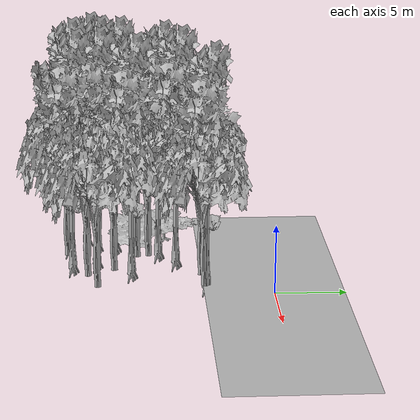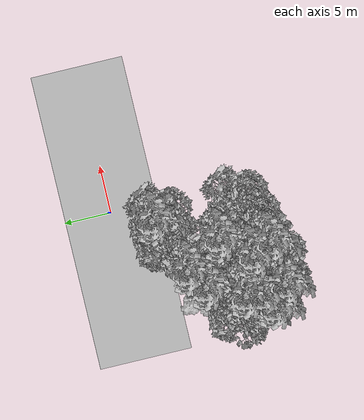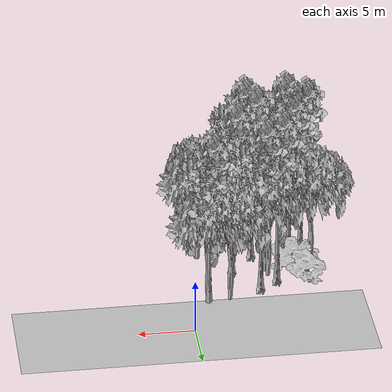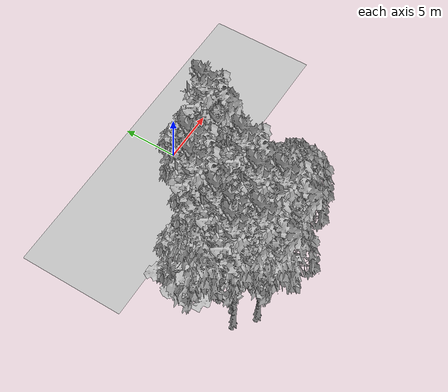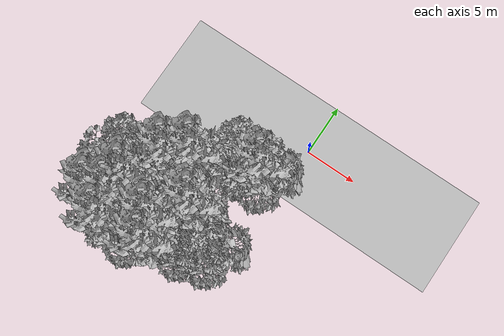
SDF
<sdf version="1.7">
 <world name="default">
  <model name="ground_plane">
   <static>1</static>
   <link name="link">
    <collision name="collision">
     <pose>-50 0 0 0 -0 0</pose>
     <geometry><plane><normal>0 0 1</normal><size>100 100</size></plane></geometry>
     <surface><contact><ode><min_depth>0.01</min_depth><max_vel>0</max_vel></ode></contact></surface>
    </collision>
    <visual name="grass">
     <cast_shadows>0</cast_shadows>
     <geometry>
      <mesh>
       <scale>0.5814285714285714 0.18142857142857144 0.1</scale>
       <uri>file://grass_plane/meshes/grass_plane.dae</uri>
      </mesh>
     </geometry>
    </visual>
   </link>
  </model>
  <model name="Tree 30">
   <static>1</static>
   <pose>-1.8607981483735188 -4.657562702218801 0 1.57079 -0 0</pose>
   <link name="link">
    <collision name="collision">
     <geometry><mesh><scale>3.5 5 3.5</scale><uri>model://tree_9/meshes/tree_9.obj</uri></mesh></geometry>
    </collision>
    <visual name="visual">
     <geometry><mesh><scale>3.5 5 3.5</scale><uri>model://tree_9/meshes/tree_9.obj</uri></mesh></geometry>
    </visual>
   </link>
  </model>
  <model name="Tree 83">
   <static>1</static>
   <pose>-5.953419792292856 -14.110833271168394 0 1.57079 -0 0</pose>
   <link name="link">
    <collision name="collision">
     <geometry><mesh><scale>3.5 5 3.5</scale><uri>model://tree_9/meshes/tree_9.obj</uri></mesh></geometry>
    </collision>
    <visual name="visual">
     <geometry><mesh><scale>3.5 5 3.5</scale><uri>model://tree_9/meshes/tree_9.obj</uri></mesh></geometry>
    </visual>
   </link>
  </model>
  <model name="Tree 90">
   <static>1</static>
   <pose>-10.207998356958008 -9.914955889244595 0 1.57079 -0 0</pose>
   <link name="link">
    <collision name="collision">
     <geometry><mesh><scale>3 2 3</scale><uri>model://tree_3/meshes/tree_3.obj</uri></mesh></geometry>
    </collision>
    <visual name="visual">
     <geometry><mesh><scale>3 2 3</scale><uri>model://tree_3/meshes/tree_3.obj</uri></mesh></geometry>
    </visual>
   </link>
  </model>
  <model name="Tree 111">
   <static>1</static>
   <pose>-8.248117580948616 -14.507871727917452 0 1.57079 -0 0</pose>
   <link name="link">
    <collision name="collision">
     <geometry><mesh><scale>3.5 5 3.5</scale><uri>model://tree_2/meshes/tree_2.obj</uri></mesh></geometry>
    </collision>
    <visual name="visual">
     <geometry><mesh><scale>3.5 5 3.5</scale><uri>model://tree_2/meshes/tree_2.obj</uri></mesh></geometry>
    </visual>
   </link>
  </model>
  <model name="Tree 126">
   <static>1</static>
   <pose>-4.056832282093858 -13.008326527965352 0 1.57079 -0 0</pose>
   <link name="link">
    <collision name="collision">
     <geometry><mesh><scale>3.5 5 3.5</scale><uri>model://tree_2/meshes/tree_2.obj</uri></mesh></geometry>
    </collision>
    <visual name="visual">
     <geometry><mesh><scale>3.5 5 3.5</scale><uri>model://tree_2/meshes/tree_2.obj</uri></mesh></geometry>
    </visual>
   </link>
  </model>
  <model name="Tree 152">
   <static>1</static>
   <pose>-6.778885776284518 -6.60122473046847 0 1.57079 -0 0</pose>
   <link name="link">
    <collision name="collision">
     <geometry><mesh><scale>3.5 5 3.5</scale><uri>model://tree_9/meshes/tree_9.obj</uri></mesh></geometry>
    </collision>
    <visual name="visual">
     <geometry><mesh><scale>3.5 5 3.5</scale><uri>model://tree_9/meshes/tree_9.obj</uri></mesh></geometry>
    </visual>
   </link>
  </model>
  <model name="Tree 164">
   <static>1</static>
   <pose>-11.872447423412837 -9.967119969829675 0 1.57079 -0 0</pose>
   <link name="link">
    <collision name="collision">
     <geometry><mesh><scale>3.5 5 3.5</scale><uri>model://tree_2/meshes/tree_2.obj</uri></mesh></geometry>
    </collision>
    <visual name="visual">
     <geometry><mesh><scale>3.5 5 3.5</scale><uri>model://tree_2/meshes/tree_2.obj</uri></mesh></geometry>
    </visual>
   </link>
  </model>
  <model name="Tree 198">
   <static>1</static>
   <pose>-9.203154176551116 -9.723749189157694 0 1.57079 -0 0</pose>
   <link name="link">
    <collision name="collision">
     <geometry><mesh><scale>3.5 5 3.5</scale><uri>model://tree_2/meshes/tree_2.obj</uri></mesh></geometry>
    </collision>
    <visual name="visual">
     <geometry><mesh><scale>3.5 5 3.5</scale><uri>model://tree_2/meshes/tree_2.obj</uri></mesh></geometry>
    </visual>
   </link>
  </model>
  <model name="Tree 210">
   <static>1</static>
   <pose>-1.8467604649711475 -4.827499092915124 0 1.57079 -0 0</pose>
   <link name="link">
    <collision name="collision">
     <geometry><mesh><scale>3.5 5 3.5</scale><uri>model://tree_2/meshes/tree_2.obj</uri></mesh></geometry>
    </collision>
    <visual name="visual">
     <geometry><mesh><scale>3.5 5 3.5</scale><uri>model://tree_2/meshes/tree_2.obj</uri></mesh></geometry>
    </visual>
   </link>
  </model>
  <model name="Tree 269">
   <static>1</static>
   <pose>-9.704830035778322 -14.426055514916767 0 1.57079 -0 0</pose>
   <link name="link">
    <collision name="collision">
     <geometry><mesh><scale>3.5 5 3.5</scale><uri>model://tree_9/meshes/tree_9.obj</uri></mesh></geometry>
    </collision>
    <visual name="visual">
     <geometry><mesh><scale>3.5 5 3.5</scale><uri>model://tree_9/meshes/tree_9.obj</uri></mesh></geometry>
    </visual>
   </link>
  </model>
  <model name="Tree 302">
   <static>1</static>
   <pose>-4.64043475376959 -9.86685771605768 0 1.57079 -0 0</pose>
   <link name="link">
    <collision name="collision">
     <geometry><mesh><scale>3.5 5 3.5</scale><uri>model://tree_9/meshes/tree_9.obj</uri></mesh></geometry>
    </collision>
    <visual name="visual">
     <geometry><mesh><scale>3.5 5 3.5</scale><uri>model://tree_9/meshes/tree_9.obj</uri></mesh></geometry>
    </visual>
   </link>
  </model>
  <model name="Tree 326">
   <static>1</static>
   <pose>-9.927616095482492 -10.974728505383926 0 1.57079 -0 0</pose>
   <link name="link">
    <collision name="collision">
     <geometry><mesh><scale>3.5 5 3.5</scale><uri>model://tree_9/meshes/tree_9.obj</uri></mesh></geometry>
    </collision>
    <visual name="visual">
     <geometry><mesh><scale>3.5 5 3.5</scale><uri>model://tree_9/meshes/tree_9.obj</uri></mesh></geometry>
    </visual>
   </link>
  </model>
  <model name="Tree 360">
   <static>1</static>
   <pose>-1.9344178685781372 -12.314023277938253 0 1.57079 -0 0</pose>
   <link name="link">
    <collision name="collision">
     <geometry><mesh><scale>3.5 5 3.5</scale><uri>model://tree_2/meshes/tree_2.obj</uri></mesh></geometry>
    </collision>
    <visual name="visual">
     <geometry><mesh><scale>3.5 5 3.5</scale><uri>model://tree_2/meshes/tree_2.obj</uri></mesh></geometry>
    </visual>
   </link>
  </model>
  <model name="Tree 361">
   <static>1</static>
   <pose>-7.679676716991963 -9.418280615311101 0 1.57079 -0 0</pose>
   <link name="link">
    <collision name="collision">
     <geometry><mesh><scale>3.5 5 3.5</scale><uri>model://tree_2/meshes/tree_2.obj</uri></mesh></geometry>
    </collision>
    <visual name="visual">
     <geometry><mesh><scale>3.5 5 3.5</scale><uri>model://tree_2/meshes/tree_2.obj</uri></mesh></geometry>
    </visual>
   </link>
  </model>
  <model name="Tree 371">
   <static>1</static>
   <pose>-8.433888938821092 -7.824481592373561 0 1.57079 -0 0</pose>
   <link name="link">
    <collision name="collision">
     <geometry><mesh><scale>3.5 5 3.5</scale><uri>model://tree_9/meshes/tree_9.obj</uri></mesh></geometry>
    </collision>
    <visual name="visual">
     <geometry><mesh><scale>3.5 5 3.5</scale><uri>model://tree_9/meshes/tree_9.obj</uri></mesh></geometry>
    </visual>
   </link>
  </model>
  <model name="Tree 379">
   <static>1</static>
   <pose>-9.754742423609038 -12.261672737711466 0 1.57079 -0 0</pose>
   <link name="link">
    <collision name="collision">
     <geometry><mesh><scale>3.5 5 3.5</scale><uri>model://tree_2/meshes/tree_2.obj</uri></mesh></geometry>
    </collision>
    <visual name="visual">
     <geometry><mesh><scale>3.5 5 3.5</scale><uri>model://tree_2/meshes/tree_2.obj</uri></mesh></geometry>
    </visual>
   </link>
  </model>
  <model name="Tree 403">
   <static>1</static>
   <pose>-5.059755047604099 -11.119840907103661 0 1.57079 -0 0</pose>
   <link name="link">
    <collision name="collision">
     <geometry><mesh><scale>3.5 5 3.5</scale><uri>model://tree_2/meshes/tree_2.obj</uri></mesh></geometry>
    </collision>
    <visual name="visual">
     <geometry><mesh><scale>3.5 5 3.5</scale><uri>model://tree_2/meshes/tree_2.obj</uri></mesh></geometry>
    </visual>
   </link>
  </model>
  <model name="Tree 408">
   <static>1</static>
   <pose>-10.187903594120812 -12.347060035472099 0 1.57079 -0 0</pose>
   <link name="link">
    <collision name="collision">
     <geometry><mesh><scale>3.5 5 3.5</scale><uri>model://tree_9/meshes/tree_9.obj</uri></mesh></geometry>
    </collision>
    <visual name="visual">
     <geometry><mesh><scale>3.5 5 3.5</scale><uri>model://tree_9/meshes/tree_9.obj</uri></mesh></geometry>
    </visual>
   </link>
  </model>
  <model name="Tree 422">
   <static>1</static>
   <pose>-11.190657138659752 -7.285998559281619 0 1.57079 -0 0</pose>
   <link name="link">
    <collision name="collision">
     <geometry><mesh><scale>4 2.5 4</scale><uri>model://tree_1/meshes/tree_1.obj</uri></mesh></geometry>
    </collision>
    <visual name="visual">
     <geometry><mesh><scale>4 2.5 4</scale><uri>model://tree_1/meshes/tree_1.obj</uri></mesh></geometry>
    </visual>
   </link>
  </model>
  <model name="Tree 427">
   <static>1</static>
   <pose>-6.738735246999099 -12.366009874904865 0 1.57079 -0 0</pose>
   <link name="link">
    <collision name="collision">
     <geometry><mesh><scale>3.5 5 3.5</scale><uri>model://tree_9/meshes/tree_9.obj</uri></mesh></geometry>
    </collision>
    <visual name="visual">
     <geometry><mesh><scale>3.5 5 3.5</scale><uri>model://tree_9/meshes/tree_9.obj</uri></mesh></geometry>
    </visual>
   </link>
  </model>
  <model name="Tree 483">
   <static>1</static>
   <pose>-3.88479443814866 -4.933465342203981 0 1.57079 -0 0</pose>
   <link name="link">
    <collision name="collision">
     <geometry><mesh><scale>3.5 5 3.5</scale><uri>model://tree_2/meshes/tree_2.obj</uri></mesh></geometry>
    </collision>
    <visual name="visual">
     <geometry><mesh><scale>3.5 5 3.5</scale><uri>model://tree_2/meshes/tree_2.obj</uri></mesh></geometry>
    </visual>
   </link>
  </model>
  <model name="Tree 513">
   <static>1</static>
   <pose>-7.822641779578298 -8.58120872859781 0 1.57079 -0 0</pose>
   <link name="link">
    <collision name="collision">
     <geometry><mesh><scale>3.5 5 3.5</scale><uri>model://tree_2/meshes/tree_2.obj</uri></mesh></geometry>
    </collision>
    <visual name="visual">
     <geometry><mesh><scale>3.5 5 3.5</scale><uri>model://tree_2/meshes/tree_2.obj</uri></mesh></geometry>
    </visual>
   </link>
  </model>
  <model name="Tree 527">
   <static>1</static>
   <pose>-11.37845369482995 -13.127479204288957 0 1.57079 -0 0</pose>
   <link name="link">
    <collision name="collision">
     <geometry><mesh><scale>3.5 5 3.5</scale><uri>model://tree_9/meshes/tree_9.obj</uri></mesh></geometry>
    </collision>
    <visual name="visual">
     <geometry><mesh><scale>3.5 5 3.5</scale><uri>model://tree_9/meshes/tree_9.obj</uri></mesh></geometry>
    </visual>
   </link>
  </model>
 </world>
</sdf>
